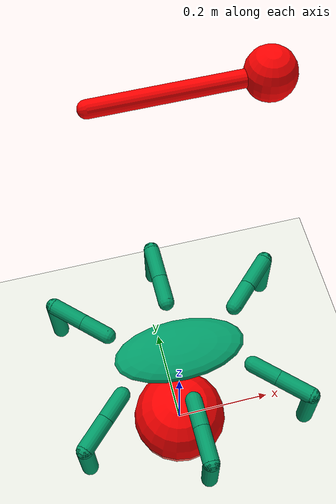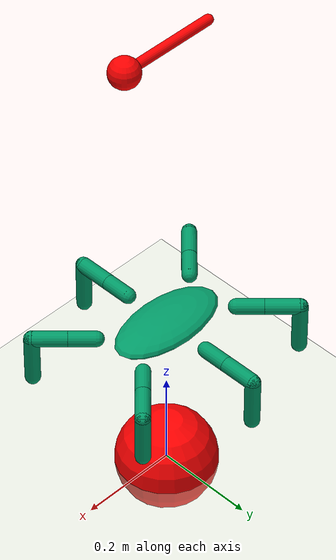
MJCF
<mujoco model="hexapod">
  <compiler angle="radian" coordinate="local" inertiafromgeom="true"/>
  <option integrator="RK4" timestep="0.01"/>
  <size nconmax="1000"/>

  <default>
    <joint armature="0.5" damping="3" limited="true"/>
    <geom conaffinity="0" condim="3" density="5.0" friction="1 0.5 0.5" margin="0.003" rgba="0.0 0.6 0.4 1"/>
  </default>

  <asset>
    <texture type="skybox" builtin="gradient" width="100" height="100" rgb1="1 1 1" rgb2="0 0 0" />
    <texture name="texgeom" type="cube" builtin="flat" mark="cross" width="127" height="1278" rgb1="0.8 0.6 0.4" rgb2="0.8 0.6 0.4" markrgb="1 1 1" random="0.01" />
    <texture name="texplane" type="2d" width="1" height="1" file="wood2.png"/>
    <material name="MatPlane" reflectance="0.0" shininess="1" specular="1" texrepeat="10 10" texture="texplane"/>
    <material name='geom' texture="texgeom" texuniform="true" />
    <hfield name="hill" file="wood1.png" size="6 6 0.2 0.1"/>
  </asset>

  <worldbody>
    <light cutoff="100" diffuse="1 1 1" dir="-0 0 -1.3" directional="true" exponent="1" pos="0 0 1.3" specular=".1 .1 .1"/>
    <!--geom name="floor" conaffinity="1" condim="3" material="MatPlane" pos="0 0 -0.8" rgba="0.8 0.9 0.8 1" type="hfield" hfield="hill"/-->
    <geom conaffinity="1" condim="3" material="MatPlane" name="floor" pos="0 0 0" rgba="0.8 0.9 0.8 1" size="10 10 10" type="plane"/>
    <body name="torso" pos="0 0 0.35">
      <camera name="track" mode="track" pos="1 -7 3.2" xyaxes="1 0 0 0 0.5 1"/>
      <geom name="torso_geom" pos="0 0 0" size="0.12 0.06 0.02" mass="1" type="ellipsoid"/>
      <joint armature="0" damping="0" limited="false" margin="0.01" name="root" pos="0 0 0" type="free"/>

      <body name="front_left_leg" pos="0.12 0.06 0">
        <joint axis="0 0 1" name="coxa_fl" pos="0.0 0.0 0.0" range="-0.6 0.6" type="hinge"/>
          <geom fromto="0.0 0.0 0.0 0.03676 0.03676 0.0" name="coxa_fl_geom" size="0.015"  type="capsule"/>
          <body pos="0.03676 0.03676 0">
            <joint axis="-1 1 0" name="femur_fl" pos="0.0 0.0 0.0" range="-1 0.3" type="hinge"/>
            <geom fromto="0.0 0.0 0.0 0.0466 0.0466 0.0" name="femur_fl_geom" size="0.015" type="capsule"/>
             <body pos="0.0466 0.0466 0.0">
                <joint axis="-1 1 0" name="tibia_fl" pos="0.0 0.0 0.0" range="-1 1" type="hinge"/>
                <geom fromto="0.0 0.0 0.0 0.0 0.0 -0.095" name="tibia_fl_geom" size="0.015" type="capsule"/>
            </body>
          </body>
      </body>

      <body name="mid_left_leg" pos="0.0 0.1 0">
        <joint axis="0 0 1" name="coxa_ml" pos="0.0 0.0 0.0" range="-0.6 0.6" type="hinge"/>
          <geom fromto="0.0 0.0 0.0 0.0 0.052 0.0" name="coxa_ml_geom" size="0.015" type="capsule"/>
          <body pos="0.0 0.052 0">
            <joint axis="-1 0 0" name="femur_ml" pos="0.0 0.0 0.0" range="-1 0.3" type="hinge"/>
            <geom fromto="0.0 0.0 0.0 0.0 0.066 0.0" name="femur_ml_geom" size="0.015" type="capsule"/>
             <body pos="0.0 0.066 0">
                <joint axis="-1 0 0" name="tibia_ml" pos="0.0 0.0 0.0" range="-1 1" type="hinge"/>
                <geom fromto="0.0 0.0 0.0 0.0 0.0 -0.095" name="tibia_ml_geom" size="0.015" type="capsule"/>
            </body>
          </body>
      </body>

      <body name="front_right_leg" pos="0.12 -0.06 0">
        <joint axis="0 0 1" name="coxa_fr" pos="0.0 0.0 0.0" range="-0.6 0.6" type="hinge"/>
          <geom fromto="0.0 0.0 0.0 0.03676 -0.03676 0.0" name="coxa_fr_geom" size="0.015" type="capsule"/>
          <body pos="0.03676 -0.03676 0">
            <joint axis="1 1 0" name="femur_fr" pos="0.0 0.0 0.0" range="-1 0.3" type="hinge"/>
            <geom fromto="0.0 0.0 0.0 0.0466 -0.0466 0.0" name="femur_fr_geom" size="0.015" type="capsule"/>
             <body pos="0.0466 -0.0466 0">
                <joint axis="1 1 0" name="tibia_fr" pos="0.0 0.0 0.0" range="-1 1" type="hinge"/>
                <geom fromto="0.0 0.0 0.0 0.0 0.0 -0.095" name="tibia_fr_geom" size="0.015" type="capsule"/>
            </body>
          </body>
      </body>

      <body name="mid_right_leg" pos="0.0 -0.1 0">
        <joint axis="0 0 1" name="coxa_mr" pos="0.0 0.0 0.0" range="-0.6 0.6" type="hinge"/>
          <geom fromto="0.0 0.0 0.0 0.0 -0.052 0.0" name="coxa_mr_geom" size="0.015" type="capsule"/>
          <body pos="0.0 -0.052 0">
            <joint axis="1 0 0" name="femur_mr" pos="0.0 0.0 0.0" range="-1 0.3" type="hinge"/>
            <geom fromto="0.0 0.0 0.0 0.0 -0.066 0.0" name="femur_mr_geom" size="0.015" type="capsule"/>
             <body pos="0.0 -0.066 0">
                <joint axis="1 0 0" name="tibia_mr" pos="0.0 0.0 0.0" range="-1 1" type="hinge"/>
                <geom fromto="0.0 0.0 0.0 0.0 0 -0.095" name="tibia_mr_geom" size="0.015" type="capsule"/>
            </body>
          </body>
      </body>

      <body name="back_right_leg" pos="-0.12 -0.06 0">
        <joint axis="0 0 1" name="coxa_rr" pos="0.0 0.0 0.0" range="-0.6 0.6" type="hinge"/>
          <geom fromto="0.0 0.0 0.0 -0.03676 -0.03676 0.0" name="coxa_rr_geom" size="0.015" type="capsule"/>
          <body pos="-0.03676 -0.03676 0">
            <joint axis="1 -1 0" name="femur_rr" pos="0.0 0.0 0.0" range="-1 0.3" type="hinge"/>
            <geom fromto="0.0 0.0 0.0 -0.0466 -0.0466 0.0" name="femur_rr_geom" size="0.015" type="capsule"/>
             <body pos="-0.0466 -0.0466 0">
                <joint axis="1 -1 0" name="tibia_rr" pos="0.0 0.0 0.0" range="-1 1" type="hinge"/>
                <geom fromto="0.0 0.0 0.0 0.0 0.0 -0.095" name="tibia_rr_geom" size="0.015" type="capsule"/>
            </body>
          </body>
      </body>

      <body name="back_left_leg" pos="-0.12 0.06 0">
        <joint axis="0 0 1" name="coxa_rl" pos="0.0 0.0 0.0" range="-0.6 0.6" type="hinge"/>
          <geom fromto="0.0 0.0 0.0 -0.03676 0.03676 0.0" name="coxa_rl_geom" size="0.015" type="capsule"/>
          <body pos="-0.03676 0.03676 0">
            <joint axis="-1 -1 0" name="femur_rl" pos="0.0 0.0 0.0" range="-1 0.3" type="hinge"/>
            <geom fromto="0.0 0.0 0.0 -0.0466 0.0466 0.0" name="femur_rl_geom" size="0.015" type="capsule"/>
             <body pos="-0.0466 0.04660 0">
                <joint axis="-1 -1 0" name="tibia_rl" pos="0.0 0.0 0.0" range="-1 1" type="hinge"/>
                <geom fromto="0.0 0.0 0.0 0.0 0.0 -0.095" name="tibia_rl_geom" size="0.015" type="capsule"/>
            </body>
          </body>
      </body>
    </body>

    <body name="goal_sphere" pos="0 0 0">
         <geom conaffinity='0' condim='3' name='goal_geom' size='0.1' rgba='1 0 0 1' mass='1' type='sphere'/>
    </body>

    <body name="dir_arrow" pos="0 0 1">
         <geom conaffinity='0' condim='3' fromto="-0.1 0 0 0.1 0 0" size='0.01' rgba='1 0 0 1' mass='1' type='capsule'/>
         <geom conaffinity='0' condim='3' pos="0.1 0 0" size='0.03' rgba='1 0 0 1' mass='1' type='sphere'/>
    </body>

  </worldbody>
  <actuator>
    <position joint="coxa_fl" kp="40"/>
    <position joint="femur_fl" kp="40"/>
    <position joint="tibia_fl" kp="40"/>
    <position joint="coxa_fr" kp="40"/>
    <position joint="femur_fr" kp="40"/>
    <position joint="tibia_fr" kp="40"/>
    <position joint="coxa_rr" kp="40"/>
    <position joint="femur_rr" kp="40"/>
    <position joint="tibia_rr" kp="40"/>
    <position joint="coxa_rl" kp="40"/>
    <position joint="femur_rl" kp="40"/>
    <position joint="tibia_rl" kp="40"/>
    <position joint="coxa_mr" kp="40"/>
    <position joint="femur_mr" kp="40"/>
    <position joint="tibia_mr" kp="40"/>
    <position joint="coxa_ml" kp="40"/>
    <position joint="femur_ml" kp="40"/>
    <position joint="tibia_ml" kp="40"/>

  </actuator>
</mujoco>
